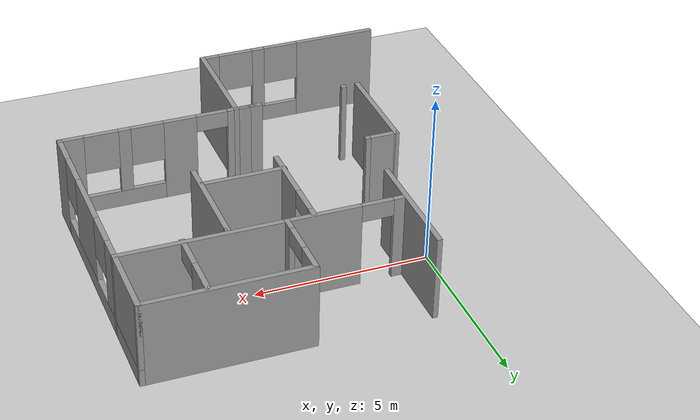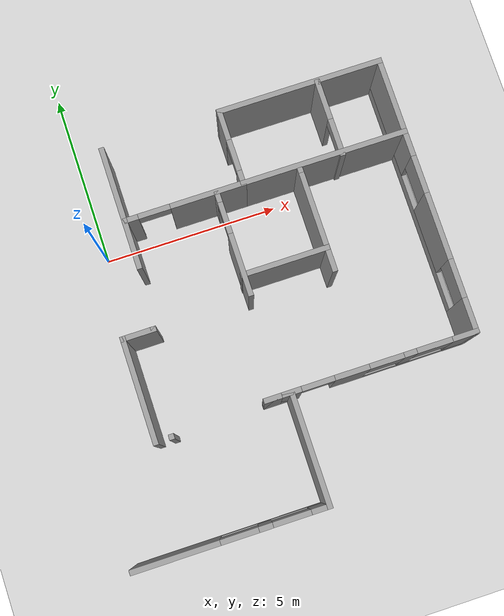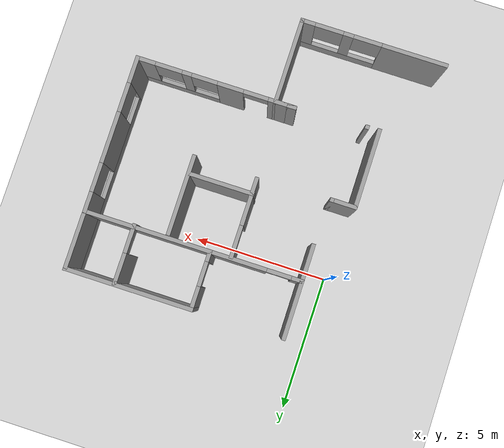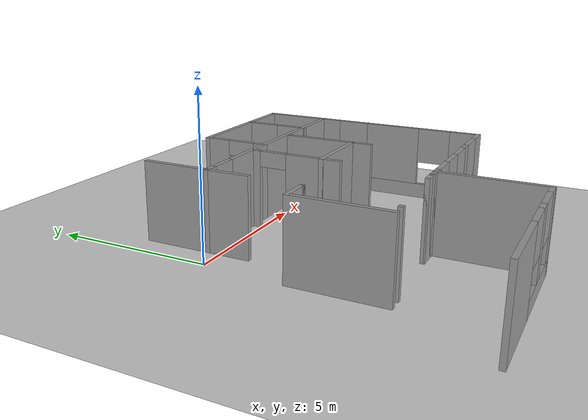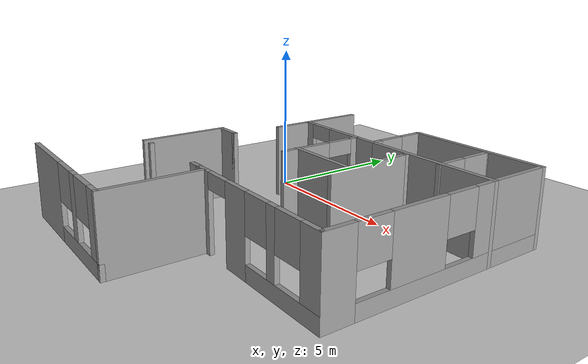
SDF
<sdf version="1.7">
 <world name="default">
  <model name="ground_plane">
   <static>1</static>
   <link name="link">
    <collision name="collision">
     <geometry><plane><normal>0 0 1</normal><size>100 100</size></plane></geometry>
     <surface>
      <contact><collide_bitmask>65535</collide_bitmask></contact>
      <friction><ode><mu>100</mu><mu2>50</mu2></ode></friction>
     </surface>
    </collision>
    <visual name="visual">
     <cast_shadows>0</cast_shadows>
     <geometry><plane><normal>0 0 1</normal><size>100 100</size></plane></geometry>
     <material>
      <script><uri>file://media/materials/scripts/gazebo.material</uri><name>Gazebo/Grey</name></script>
     </material>
    </visual>
   </link>
  </model>
  <model name="Floorplan1">
   <pose>1.2745 -2.98867 0 0 -0 0</pose>
   <link name="Wall_20">
    <collision name="Wall_20_Collision">
     <geometry><box><size>0.15 0.15 2.5</size></box></geometry>
     <pose>0 0 1.25 0 -0 0</pose>
    </collision>
    <visual name="Wall_20_Visual">
     <pose>0 0 1.25 0 -0 0</pose>
     <geometry><box><size>0.15 0.15 2.5</size></box></geometry>
     <material>
      <script><uri>file://media/materials/scripts/gazebo.material</uri><name>Gazebo/Grey</name></script>
      <ambient>1 1 1 1</ambient>
     </material>
     <meta><layer>0</layer></meta>
    </visual>
    <pose>-0.948184 -2.49781 0 0 -0 0</pose>
   </link>
   <link name="Wall_22">
    <collision name="Wall_22_Collision">
     <geometry><box><size>3 0.15 2.5</size></box></geometry>
     <pose>0 0 1.25 0 -0 0</pose>
    </collision>
    <visual name="Wall_22_Visual">
     <pose>0 0 1.25 0 -0 0</pose>
     <geometry><box><size>3 0.15 2.5</size></box></geometry>
     <material>
      <script><uri>file://media/materials/scripts/gazebo.material</uri><name>Gazebo/Grey</name></script>
      <ambient>1 1 1 1</ambient>
     </material>
     <meta><layer>0</layer></meta>
    </visual>
    <pose>-1.39197 -1.07775 0 0 -0 1.5708</pose>
   </link>
   <link name="Wall_23">
    <collision name="Wall_23_Collision">
     <geometry><box><size>1 0.15 2.5</size></box></geometry>
     <pose>0 0 1.25 0 -0 0</pose>
    </collision>
    <visual name="Wall_23_Visual">
     <pose>0 0 1.25 0 -0 0</pose>
     <geometry><box><size>1 0.15 2.5</size></box></geometry>
     <material>
      <script><uri>file://media/materials/scripts/gazebo.material</uri><name>Gazebo/Grey</name></script>
      <ambient>1 1 1 1</ambient>
     </material>
     <meta><layer>0</layer></meta>
    </visual>
    <pose>-0.966966 0.347251 0 0 -0 0</pose>
   </link>
   <link name="Wall_24">
    <collision name="Wall_24_Collision">
     <geometry><box><size>0.15 0.15 2.5</size></box></geometry>
     <pose>0 0 1.25 0 -0 0</pose>
    </collision>
    <visual name="Wall_24_Visual">
     <pose>0 0 1.25 0 -0 0</pose>
     <geometry><box><size>0.15 0.15 2.5</size></box></geometry>
     <material>
      <script><uri>file://media/materials/scripts/gazebo.material</uri><name>Gazebo/Grey</name></script>
      <ambient>1 1 1 1</ambient>
     </material>
     <meta><layer>0</layer></meta>
    </visual>
    <pose>-0.541966 0.347251 0 0 -0 0</pose>
   </link>
   <link name="Wall_34">
    <pose>-0.276816 -5.475 0 0 -0 0</pose>
    <visual name="Wall_34_Visual_0">
     <pose>-1.52521 0 1.25 0 -0 0</pose>
     <geometry><box><size>2.44957 0.15 2.5</size></box></geometry>
     <material>
      <script><uri>file://media/materials/scripts/gazebo.material</uri><name>Gazebo/Grey</name></script>
      <ambient>1 1 1 1</ambient>
     </material>
     <meta><layer>0</layer></meta>
    </visual>
    <collision name="Wall_34_Collision_0">
     <geometry><box><size>2.44957 0.15 2.5</size></box></geometry>
     <pose>-1.52521 0 1.25 0 -0 0</pose>
    </collision>
    <visual name="Wall_34_Visual_1">
     <pose>1.22479 0 0.25 0 -0 0</pose>
     <geometry><box><size>3.05043 0.15 0.5</size></box></geometry>
     <material>
      <script><uri>file://media/materials/scripts/gazebo.material</uri><name>Gazebo/Grey</name></script>
      <ambient>1 1 1 1</ambient>
     </material>
     <meta><layer>0</layer></meta>
    </visual>
    <collision name="Wall_34_Collision_1">
     <geometry><box><size>3.05043 0.15 0.5</size></box></geometry>
     <pose>1.22479 0 0.25 0 -0 0</pose>
    </collision>
    <visual name="Wall_34_Visual_2">
     <pose>0.940989 0 1.5 0 -0 0</pose>
     <geometry><box><size>0.382532 0.15 2</size></box></geometry>
     <material>
      <script><uri>file://media/materials/scripts/gazebo.material</uri><name>Gazebo/Grey</name></script>
      <ambient>1 1 1 1</ambient>
     </material>
     <meta><layer>0</layer></meta>
    </visual>
    <collision name="Wall_34_Collision_2">
     <geometry><box><size>0.382532 0.15 2</size></box></geometry>
     <pose>0.940989 0 1.5 0 -0 0</pose>
    </collision>
    <visual name="Wall_34_Visual_3">
     <pose>2.4662 0 1.5 0 -0 0</pose>
     <geometry><box><size>0.567595 0.15 2</size></box></geometry>
     <material>
      <script><uri>file://media/materials/scripts/gazebo.material</uri><name>Gazebo/Grey</name></script>
      <ambient>1 1 1 1</ambient>
     </material>
     <meta><layer>0</layer></meta>
    </visual>
    <collision name="Wall_34_Collision_3">
     <geometry><box><size>0.567595 0.15 2</size></box></geometry>
     <pose>2.4662 0 1.5 0 -0 0</pose>
    </collision>
    <visual name="Wall_34_Visual_4">
     <pose>0.224647 0 1.9 0 -0 0</pose>
     <geometry><box><size>1.05015 0.15 1.2</size></box></geometry>
     <material>
      <script><uri>file://media/materials/scripts/gazebo.material</uri><name>Gazebo/Grey</name></script>
      <ambient>1 1 1 1</ambient>
     </material>
     <meta><layer>0</layer></meta>
    </visual>
    <collision name="Wall_34_Collision_4">
     <geometry><box><size>1.05015 0.15 1.2</size></box></geometry>
     <pose>0.224647 0 1.9 0 -0 0</pose>
    </collision>
    <visual name="Wall_34_Visual_5">
     <pose>1.65733 0 1.9 0 -0 0</pose>
     <geometry><box><size>1.05015 0.15 1.2</size></box></geometry>
     <material>
      <script><uri>file://media/materials/scripts/gazebo.material</uri><name>Gazebo/Grey</name></script>
      <ambient>1 1 1 1</ambient>
     </material>
     <meta><layer>0</layer></meta>
    </visual>
    <collision name="Wall_34_Collision_5">
     <geometry><box><size>1.05015 0.15 1.2</size></box></geometry>
     <pose>1.65733 0 1.9 0 -0 0</pose>
    </collision>
   </link>
   <link name="Wall_35">
    <collision name="Wall_35_Collision">
     <geometry><box><size>3.25 0.15 2.5</size></box></geometry>
     <pose>0 0 1.25 0 -0 0</pose>
    </collision>
    <visual name="Wall_35_Visual">
     <pose>0 0 1.25 0 -0 0</pose>
     <geometry><box><size>3.25 0.15 2.5</size></box></geometry>
     <material>
      <script><uri>file://media/materials/scripts/gazebo.material</uri><name>Gazebo/Grey</name></script>
      <ambient>1 1 1 1</ambient>
     </material>
     <meta><layer>0</layer></meta>
    </visual>
    <pose>2.39818 -3.925 0 0 -0 1.5708</pose>
   </link>
   <link name="Wall_36">
    <collision name="Wall_36_Collision">
     <geometry><box><size>0.5 0.15 2.5</size></box></geometry>
     <pose>0 0 1.25 0 -0 0</pose>
    </collision>
    <visual name="Wall_36_Visual">
     <pose>0 0 1.25 0 -0 0</pose>
     <geometry><box><size>0.5 0.15 2.5</size></box></geometry>
     <material>
      <script><uri>file://media/materials/scripts/gazebo.material</uri><name>Gazebo/Grey</name></script>
      <ambient>1 1 1 1</ambient>
     </material>
     <meta><layer>0</layer></meta>
    </visual>
    <pose>2.22318 -2.375 0 0 -0 3.14159</pose>
   </link>
   <link name="Wall_37">
    <collision name="Wall_37_Collision">
     <geometry><box><size>0.5 0.15 2.5</size></box></geometry>
     <pose>0 0 1.25 0 -0 0</pose>
    </collision>
    <visual name="Wall_37_Visual">
     <pose>0 0 1.25 0 -0 0</pose>
     <geometry><box><size>0.5 0.15 2.5</size></box></geometry>
     <material>
      <script><uri>file://media/materials/scripts/gazebo.material</uri><name>Gazebo/Grey</name></script>
      <ambient>1 1 1 1</ambient>
     </material>
     <meta><layer>0</layer></meta>
    </visual>
    <pose>1.87318 -2.375 0 0 -0 3.14159</pose>
   </link>
   <link name="Wall_38">
    <pose>4.62318 -2.375 0 0 -0 0</pose>
    <visual name="Wall_38_Visual_0">
     <pose>-2.47571 0 1.25 0 -0 0</pose>
     <geometry><box><size>1.04858 0.15 2.5</size></box></geometry>
     <material>
      <script><uri>file://media/materials/scripts/gazebo.material</uri><name>Gazebo/Grey</name></script>
      <ambient>1 1 1 1</ambient>
     </material>
     <meta><layer>0</layer></meta>
    </visual>
    <collision name="Wall_38_Collision_0">
     <geometry><box><size>1.04858 0.15 2.5</size></box></geometry>
     <pose>-2.47571 0 1.25 0 -0 0</pose>
    </collision>
    <visual name="Wall_38_Visual_1">
     <pose>-0.543594 0 1.25 0 -0 0</pose>
     <geometry><box><size>0.970431 0.15 2.5</size></box></geometry>
     <material>
      <script><uri>file://media/materials/scripts/gazebo.material</uri><name>Gazebo/Grey</name></script>
      <ambient>1 1 1 1</ambient>
     </material>
     <meta><layer>0</layer></meta>
    </visual>
    <collision name="Wall_38_Collision_1">
     <geometry><box><size>0.970431 0.15 2.5</size></box></geometry>
     <pose>-0.543594 0 1.25 0 -0 0</pose>
    </collision>
    <visual name="Wall_38_Visual_2">
     <pose>1.47081 0 0.25 0 -0 0</pose>
     <geometry><box><size>3.05838 0.15 0.5</size></box></geometry>
     <material>
      <script><uri>file://media/materials/scripts/gazebo.material</uri><name>Gazebo/Grey</name></script>
      <ambient>1 1 1 1</ambient>
     </material>
     <meta><layer>0</layer></meta>
    </visual>
    <collision name="Wall_38_Collision_2">
     <geometry><box><size>3.05838 0.15 0.5</size></box></geometry>
     <pose>1.47081 0 0.25 0 -0 0</pose>
    </collision>
    <visual name="Wall_38_Visual_3">
     <pose>1.07818 0 1.5 0 -0 0</pose>
     <geometry><box><size>0.356731 0.15 2</size></box></geometry>
     <material>
      <script><uri>file://media/materials/scripts/gazebo.material</uri><name>Gazebo/Grey</name></script>
      <ambient>1 1 1 1</ambient>
     </material>
     <meta><layer>0</layer></meta>
    </visual>
    <collision name="Wall_38_Collision_3">
     <geometry><box><size>0.356731 0.15 2</size></box></geometry>
     <pose>1.07818 0 1.5 0 -0 0</pose>
    </collision>
    <visual name="Wall_38_Visual_4">
     <pose>2.62715 0 1.5 0 -0 0</pose>
     <geometry><box><size>0.745701 0.15 2</size></box></geometry>
     <material>
      <script><uri>file://media/materials/scripts/gazebo.material</uri><name>Gazebo/Grey</name></script>
      <ambient>1 1 1 1</ambient>
     </material>
     <meta><layer>0</layer></meta>
    </visual>
    <collision name="Wall_38_Collision_4">
     <geometry><box><size>0.745701 0.15 2</size></box></geometry>
     <pose>2.62715 0 1.5 0 -0 0</pose>
    </collision>
    <visual name="Wall_38_Visual_5">
     <pose>0.420721 0 1.9 0 -0 0</pose>
     <geometry><box><size>0.958198 0.15 1.2</size></box></geometry>
     <material>
      <script><uri>file://media/materials/scripts/gazebo.material</uri><name>Gazebo/Grey</name></script>
      <ambient>1 1 1 1</ambient>
     </material>
     <meta><layer>0</layer></meta>
    </visual>
    <collision name="Wall_38_Collision_5">
     <geometry><box><size>0.958198 0.15 1.2</size></box></geometry>
     <pose>0.420721 0 1.9 0 -0 0</pose>
    </collision>
    <visual name="Wall_38_Visual_6">
     <pose>1.75543 0 1.9 0 -0 0</pose>
     <geometry><box><size>0.997748 0.15 1.2</size></box></geometry>
     <material>
      <script><uri>file://media/materials/scripts/gazebo.material</uri><name>Gazebo/Grey</name></script>
      <ambient>1 1 1 1</ambient>
     </material>
     <meta><layer>0</layer></meta>
    </visual>
    <collision name="Wall_38_Collision_6">
     <geometry><box><size>0.997748 0.15 1.2</size></box></geometry>
     <pose>1.75543 0 1.9 0 -0 0</pose>
    </collision>
    <visual name="Wall_38_Visual_7">
     <pose>-1.49012 0 2.25 0 -0 0</pose>
     <geometry><box><size>0.922613 0.15 0.5</size></box></geometry>
     <material>
      <script><uri>file://media/materials/scripts/gazebo.material</uri><name>Gazebo/Grey</name></script>
      <ambient>1 1 1 1</ambient>
     </material>
     <meta><layer>0</layer></meta>
    </visual>
    <collision name="Wall_38_Collision_7">
     <geometry><box><size>0.922613 0.15 0.5</size></box></geometry>
     <pose>-1.49012 0 2.25 0 -0 0</pose>
    </collision>
   </link>
   <link name="Wall_39">
    <pose>7.54818 1.55 0 0 -0 1.5708</pose>
    <visual name="Wall_39_Visual_0">
     <pose>-3.48861 0 1.25 0 -0 0</pose>
     <geometry><box><size>1.02278 0.15 2.5</size></box></geometry>
     <material>
      <script><uri>file://media/materials/scripts/gazebo.material</uri><name>Gazebo/Grey</name></script>
      <ambient>1 1 1 1</ambient>
     </material>
     <meta><layer>0</layer></meta>
    </visual>
    <collision name="Wall_39_Collision_0">
     <geometry><box><size>1.02278 0.15 2.5</size></box></geometry>
     <pose>-3.48861 0 1.25 0 -0 0</pose>
    </collision>
    <visual name="Wall_39_Visual_1">
     <pose>0.511388 0 0.25 0 -0 0</pose>
     <geometry><box><size>6.97722 0.15 0.5</size></box></geometry>
     <material>
      <script><uri>file://media/materials/scripts/gazebo.material</uri><name>Gazebo/Grey</name></script>
      <ambient>1 1 1 1</ambient>
     </material>
     <meta><layer>0</layer></meta>
    </visual>
    <collision name="Wall_39_Collision_1">
     <geometry><box><size>6.97722 0.15 0.5</size></box></geometry>
     <pose>0.511388 0 0.25 0 -0 0</pose>
    </collision>
    <visual name="Wall_39_Visual_2">
     <pose>-0.926029 0 1.5 0 -0 0</pose>
     <geometry><box><size>1.90914 0.15 2</size></box></geometry>
     <material>
      <script><uri>file://media/materials/scripts/gazebo.material</uri><name>Gazebo/Grey</name></script>
      <ambient>1 1 1 1</ambient>
     </material>
     <meta><layer>0</layer></meta>
    </visual>
    <collision name="Wall_39_Collision_2">
     <geometry><box><size>1.90914 0.15 2</size></box></geometry>
     <pose>-0.926029 0 1.5 0 -0 0</pose>
    </collision>
    <visual name="Wall_39_Visual_3">
     <pose>2.55269 0 1.5 0 -0 0</pose>
     <geometry><box><size>2.89461 0.15 2</size></box></geometry>
     <material>
      <script><uri>file://media/materials/scripts/gazebo.material</uri><name>Gazebo/Grey</name></script>
      <ambient>1 1 1 1</ambient>
     </material>
     <meta><layer>0</layer></meta>
    </visual>
    <collision name="Wall_39_Collision_3">
     <geometry><box><size>2.89461 0.15 2</size></box></geometry>
     <pose>2.55269 0 1.5 0 -0 0</pose>
    </collision>
    <visual name="Wall_39_Visual_4">
     <pose>-2.42891 0 1.9 0 -0 0</pose>
     <geometry><box><size>1.09662 0.15 1.2</size></box></geometry>
     <material>
      <script><uri>file://media/materials/scripts/gazebo.material</uri><name>Gazebo/Grey</name></script>
      <ambient>1 1 1 1</ambient>
     </material>
     <meta><layer>0</layer></meta>
    </visual>
    <collision name="Wall_39_Collision_4">
     <geometry><box><size>1.09662 0.15 1.2</size></box></geometry>
     <pose>-2.42891 0 1.9 0 -0 0</pose>
    </collision>
    <visual name="Wall_39_Visual_5">
     <pose>0.566966 0 1.9 0 -0 0</pose>
     <geometry><box><size>1.07685 0.15 1.2</size></box></geometry>
     <material>
      <script><uri>file://media/materials/scripts/gazebo.material</uri><name>Gazebo/Grey</name></script>
      <ambient>1 1 1 1</ambient>
     </material>
     <meta><layer>0</layer></meta>
    </visual>
    <collision name="Wall_39_Collision_5">
     <geometry><box><size>1.07685 0.15 1.2</size></box></geometry>
     <pose>0.566966 0 1.9 0 -0 0</pose>
    </collision>
   </link>
   <link name="Wall_40">
    <collision name="Wall_40_Collision">
     <geometry><box><size>4.75 0.15 2.5</size></box></geometry>
     <pose>0 0 1.25 0 -0 0</pose>
    </collision>
    <visual name="Wall_40_Visual">
     <pose>0 0 1.25 0 -0 0</pose>
     <geometry><box><size>4.75 0.15 2.5</size></box></geometry>
     <material>
      <script><uri>file://media/materials/scripts/gazebo.material</uri><name>Gazebo/Grey</name></script>
      <ambient>1 1 1 1</ambient>
     </material>
     <meta><layer>0</layer></meta>
    </visual>
    <pose>5.24818 5.475 0 0 -0 3.14159</pose>
   </link>
   <link name="Wall_41">
    <pose>2.94818 4.425 0 0 -0 -1.5708</pose>
    <visual name="Wall_41_Visual_0">
     <pose>-0.66941 0 1.25 0 -0 0</pose>
     <geometry><box><size>0.911179 0.15 2.5</size></box></geometry>
     <material>
      <script><uri>file://media/materials/scripts/gazebo.material</uri><name>Gazebo/Grey</name></script>
      <ambient>1 1 1 1</ambient>
     </material>
     <meta><layer>0</layer></meta>
    </visual>
    <collision name="Wall_41_Collision_0">
     <geometry><box><size>0.911179 0.15 2.5</size></box></geometry>
     <pose>-0.66941 0 1.25 0 -0 0</pose>
    </collision>
    <visual name="Wall_41_Visual_1">
     <pose>0.90559 0 1.25 0 -0 0</pose>
     <geometry><box><size>0.438821 0.15 2.5</size></box></geometry>
     <material>
      <script><uri>file://media/materials/scripts/gazebo.material</uri><name>Gazebo/Grey</name></script>
      <ambient>1 1 1 1</ambient>
     </material>
     <meta><layer>0</layer></meta>
    </visual>
    <collision name="Wall_41_Collision_1">
     <geometry><box><size>0.438821 0.15 2.5</size></box></geometry>
     <pose>0.90559 0 1.25 0 -0 0</pose>
    </collision>
    <visual name="Wall_41_Visual_2">
     <pose>0.236179 0 2.25 0 -0 0</pose>
     <geometry><box><size>0.9 0.15 0.5</size></box></geometry>
     <material>
      <script><uri>file://media/materials/scripts/gazebo.material</uri><name>Gazebo/Grey</name></script>
      <ambient>1 1 1 1</ambient>
     </material>
     <meta><layer>0</layer></meta>
    </visual>
    <collision name="Wall_41_Collision_2">
     <geometry><box><size>0.9 0.15 0.5</size></box></geometry>
     <pose>0.236179 0 2.25 0 -0 0</pose>
    </collision>
   </link>
   <link name="Wall_42">
    <pose>1.27318 3.375 0 0 -0 3.14159</pose>
    <visual name="Wall_42_Visual_0">
     <pose>-0.677479 0 1.25 0 -0 0</pose>
     <geometry><box><size>2.14504 0.15 2.5</size></box></geometry>
     <material>
      <script><uri>file://media/materials/scripts/gazebo.material</uri><name>Gazebo/Grey</name></script>
      <ambient>1 1 1 1</ambient>
     </material>
     <meta><layer>0</layer></meta>
    </visual>
    <collision name="Wall_42_Collision_0">
     <geometry><box><size>2.14504 0.15 2.5</size></box></geometry>
     <pose>-0.677479 0 1.25 0 -0 0</pose>
    </collision>
    <visual name="Wall_42_Visual_1">
     <pose>1.52252 0 1.25 0 -0 0</pose>
     <geometry><box><size>0.454957 0.15 2.5</size></box></geometry>
     <material>
      <script><uri>file://media/materials/scripts/gazebo.material</uri><name>Gazebo/Grey</name></script>
      <ambient>1 1 1 1</ambient>
     </material>
     <meta><layer>0</layer></meta>
    </visual>
    <collision name="Wall_42_Collision_1">
     <geometry><box><size>0.454957 0.15 2.5</size></box></geometry>
     <pose>1.52252 0 1.25 0 -0 0</pose>
    </collision>
    <visual name="Wall_42_Visual_2">
     <pose>0.845043 0 2.25 0 -0 0</pose>
     <geometry><box><size>0.9 0.15 0.5</size></box></geometry>
     <material>
      <script><uri>file://media/materials/scripts/gazebo.material</uri><name>Gazebo/Grey</name></script>
      <ambient>1 1 1 1</ambient>
     </material>
     <meta><layer>0</layer></meta>
    </visual>
    <collision name="Wall_42_Collision_2">
     <geometry><box><size>0.9 0.15 0.5</size></box></geometry>
     <pose>0.845043 0 2.25 0 -0 0</pose>
    </collision>
   </link>
   <link name="Wall_43">
    <collision name="Wall_43_Collision">
     <geometry><box><size>0.15 0.15 2.5</size></box></geometry>
     <pose>0 0 1.25 0 -0 0</pose>
    </collision>
    <visual name="Wall_43_Visual">
     <pose>0 0 1.25 0 -0 0</pose>
     <geometry><box><size>0.15 0.15 2.5</size></box></geometry>
     <material>
      <script><uri>file://media/materials/scripts/gazebo.material</uri><name>Gazebo/Grey</name></script>
      <ambient>1 1 1 1</ambient>
     </material>
     <meta><layer>0</layer></meta>
    </visual>
    <pose>-0.401816 3.375 0 0 -0 0</pose>
   </link>
   <link name="Wall_45">
    <collision name="Wall_45_Collision">
     <geometry><box><size>4.75 0.15 2.5</size></box></geometry>
     <pose>0 0 1.25 0 -0 0</pose>
    </collision>
    <visual name="Wall_45_Visual">
     <pose>0 0 1.25 0 -0 0</pose>
     <geometry><box><size>4.75 0.15 2.5</size></box></geometry>
     <material>
      <script><uri>file://media/materials/scripts/gazebo.material</uri><name>Gazebo/Grey</name></script>
      <ambient>1 1 1 1</ambient>
     </material>
     <meta><layer>0</layer></meta>
    </visual>
    <pose>5.24818 3.375 0 0 -0 0</pose>
   </link>
   <link name="Wall_46">
    <collision name="Wall_46_Collision">
     <geometry><box><size>0.15 0.15 2.5</size></box></geometry>
     <pose>0 0 1.25 0 -0 0</pose>
    </collision>
    <visual name="Wall_46_Visual">
     <pose>0 0 1.25 0 -0 0</pose>
     <geometry><box><size>0.15 0.15 2.5</size></box></geometry>
     <material>
      <script><uri>file://media/materials/scripts/gazebo.material</uri><name>Gazebo/Grey</name></script>
      <ambient>1 1 1 1</ambient>
     </material>
     <meta><layer>0</layer></meta>
    </visual>
    <pose>7.54818 3.375 0 0 -0 0</pose>
   </link>
   <link name="Wall_48">
    <pose>5.74929 4.38035 0 0 -0 1.5708</pose>
    <visual name="Wall_48_Visual_0">
     <pose>-1.03715 0 1.25 0 -0 0</pose>
     <geometry><box><size>0.1757 0.15 2.5</size></box></geometry>
     <material>
      <script><uri>file://media/materials/scripts/gazebo.material</uri><name>Gazebo/Grey</name></script>
      <ambient>1 1 1 1</ambient>
     </material>
     <meta><layer>0</layer></meta>
    </visual>
    <collision name="Wall_48_Collision_0">
     <geometry><box><size>0.1757 0.15 2.5</size></box></geometry>
     <pose>-1.03715 0 1.25 0 -0 0</pose>
    </collision>
    <visual name="Wall_48_Visual_1">
     <pose>0.53785 0 1.25 0 -0 0</pose>
     <geometry><box><size>1.1743 0.15 2.5</size></box></geometry>
     <material>
      <script><uri>file://media/materials/scripts/gazebo.material</uri><name>Gazebo/Grey</name></script>
      <ambient>1 1 1 1</ambient>
     </material>
     <meta><layer>0</layer></meta>
    </visual>
    <collision name="Wall_48_Collision_1">
     <geometry><box><size>1.1743 0.15 2.5</size></box></geometry>
     <pose>0.53785 0 1.25 0 -0 0</pose>
    </collision>
    <visual name="Wall_48_Visual_2">
     <pose>-0.4993 0 2.25 0 -0 0</pose>
     <geometry><box><size>0.9 0.15 0.5</size></box></geometry>
     <material>
      <script><uri>file://media/materials/scripts/gazebo.material</uri><name>Gazebo/Grey</name></script>
      <ambient>1 1 1 1</ambient>
     </material>
     <meta><layer>0</layer></meta>
    </visual>
    <collision name="Wall_48_Collision_2">
     <geometry><box><size>0.9 0.15 0.5</size></box></geometry>
     <pose>-0.4993 0 2.25 0 -0 0</pose>
    </collision>
   </link>
   <link name="Wall_49">
    <collision name="Wall_49_Collision">
     <geometry><box><size>0.15 0.15 2.5</size></box></geometry>
     <pose>0 0 1.25 0 -0 0</pose>
    </collision>
    <visual name="Wall_49_Visual">
     <pose>0 0 1.25 0 -0 0</pose>
     <geometry><box><size>0.15 0.15 2.5</size></box></geometry>
     <material>
      <script><uri>file://media/materials/scripts/gazebo.material</uri><name>Gazebo/Grey</name></script>
      <ambient>1 1 1 1</ambient>
     </material>
     <meta><layer>0</layer></meta>
    </visual>
    <pose>5.74929 5.43035 0 0 -0 0</pose>
   </link>
   <link name="Wall_51">
    <collision name="Wall_51_Collision">
     <geometry><box><size>3 0.15 2.5</size></box></geometry>
     <pose>0 0 1.25 0 -0 0</pose>
    </collision>
    <visual name="Wall_51_Visual">
     <pose>0 0 1.25 0 -0 0</pose>
     <geometry><box><size>3 0.15 2.5</size></box></geometry>
     <material>
      <script><uri>file://media/materials/scripts/gazebo.material</uri><name>Gazebo/Grey</name></script>
      <ambient>1 1 1 1</ambient>
     </material>
     <meta><layer>0</layer></meta>
    </visual>
    <pose>4.52325 1.80891 0 0 -0 1.5708</pose>
   </link>
   <link name="Wall_52">
    <collision name="Wall_52_Collision">
     <geometry><box><size>0.15 0.15 2.5</size></box></geometry>
     <pose>0 0 1.25 0 -0 0</pose>
    </collision>
    <visual name="Wall_52_Visual">
     <pose>0 0 1.25 0 -0 0</pose>
     <geometry><box><size>0.15 0.15 2.5</size></box></geometry>
     <material>
      <script><uri>file://media/materials/scripts/gazebo.material</uri><name>Gazebo/Grey</name></script>
      <ambient>1 1 1 1</ambient>
     </material>
     <meta><layer>0</layer></meta>
    </visual>
    <pose>4.52325 3.23391 0 0 -0 0</pose>
   </link>
   <link name="Wall_54">
    <pose>2.18983 1.88558 0 0 -0 -1.5708</pose>
    <visual name="Wall_54_Visual_0">
     <pose>-1.3401 0 1.25 0 -0 0</pose>
     <geometry><box><size>0.319804 0.15 2.5</size></box></geometry>
     <material>
      <script><uri>file://media/materials/scripts/gazebo.material</uri><name>Gazebo/Grey</name></script>
      <ambient>1 1 1 1</ambient>
     </material>
     <meta><layer>0</layer></meta>
    </visual>
    <collision name="Wall_54_Collision_0">
     <geometry><box><size>0.319804 0.15 2.5</size></box></geometry>
     <pose>-1.3401 0 1.25 0 -0 0</pose>
    </collision>
    <visual name="Wall_54_Visual_1">
     <pose>0.609902 0 1.25 0 -0 0</pose>
     <geometry><box><size>1.7802 0.15 2.5</size></box></geometry>
     <material>
      <script><uri>file://media/materials/scripts/gazebo.material</uri><name>Gazebo/Grey</name></script>
      <ambient>1 1 1 1</ambient>
     </material>
     <meta><layer>0</layer></meta>
    </visual>
    <collision name="Wall_54_Collision_1">
     <geometry><box><size>1.7802 0.15 2.5</size></box></geometry>
     <pose>0.609902 0 1.25 0 -0 0</pose>
    </collision>
    <visual name="Wall_54_Visual_2">
     <pose>-0.730196 0 2.25 0 -0 0</pose>
     <geometry><box><size>0.9 0.15 0.5</size></box></geometry>
     <material>
      <script><uri>file://media/materials/scripts/gazebo.material</uri><name>Gazebo/Grey</name></script>
      <ambient>1 1 1 1</ambient>
     </material>
     <meta><layer>0</layer></meta>
    </visual>
    <collision name="Wall_54_Collision_2">
     <geometry><box><size>0.9 0.15 0.5</size></box></geometry>
     <pose>-0.730196 0 2.25 0 -0 0</pose>
    </collision>
   </link>
   <link name="Wall_56">
    <collision name="Wall_56_Collision">
     <geometry><box><size>2.5 0.15 2.5</size></box></geometry>
     <pose>0 0 1.25 0 -0 0</pose>
    </collision>
    <visual name="Wall_56_Visual">
     <pose>0 0 1.25 0 -0 0</pose>
     <geometry><box><size>2.5 0.15 2.5</size></box></geometry>
     <material>
      <script><uri>file://media/materials/scripts/gazebo.material</uri><name>Gazebo/Grey</name></script>
      <ambient>1 1 1 1</ambient>
     </material>
     <meta><layer>0</layer></meta>
    </visual>
    <pose>3.34506 0.996927 0 0 -0 0</pose>
   </link>
   <link name="Wall_57">
    <collision name="Wall_57_Collision">
     <geometry><box><size>0.15 0.15 2.5</size></box></geometry>
     <pose>0 0 1.25 0 -0 0</pose>
    </collision>
    <visual name="Wall_57_Visual">
     <pose>0 0 1.25 0 -0 0</pose>
     <geometry><box><size>0.15 0.15 2.5</size></box></geometry>
     <material>
      <script><uri>file://media/materials/scripts/gazebo.material</uri><name>Gazebo/Grey</name></script>
      <ambient>1 1 1 1</ambient>
     </material>
     <meta><layer>0</layer></meta>
    </visual>
    <pose>4.52006 0.996927 0 0 -0 0</pose>
   </link>
   <link name="Wall_58">
    <collision name="Wall_58_Collision">
     <geometry><box><size>0.15 0.15 2.5</size></box></geometry>
     <pose>0 0 1.25 0 -0 0</pose>
    </collision>
    <visual name="Wall_58_Visual">
     <pose>0 0 1.25 0 -0 0</pose>
     <geometry><box><size>0.15 0.15 2.5</size></box></geometry>
     <material>
      <script><uri>file://media/materials/scripts/gazebo.material</uri><name>Gazebo/Grey</name></script>
      <ambient>1 1 1 1</ambient>
     </material>
     <meta><layer>0</layer></meta>
    </visual>
    <pose>4.52006 0.996927 0 0 -0 0</pose>
   </link>
   <link name="Wall_8">
    <collision name="Wall_8_Collision">
     <geometry><box><size>3.5 0.15 2.5</size></box></geometry>
     <pose>0 0 1.25 0 -0 0</pose>
    </collision>
    <visual name="Wall_8_Visual">
     <pose>0 0 1.25 0 -0 0</pose>
     <geometry><box><size>3.5 0.15 2.5</size></box></geometry>
     <material>
      <script><uri>file://media/materials/scripts/gazebo.material</uri><name>Gazebo/Grey</name></script>
      <ambient>1 1 1 1</ambient>
     </material>
     <meta><layer>0</layer></meta>
    </visual>
    <pose>-0.401554 3.75385 0 0 -0 1.5708</pose>
   </link>
   <static>1</static>
  </model>
 </world>
</sdf>
